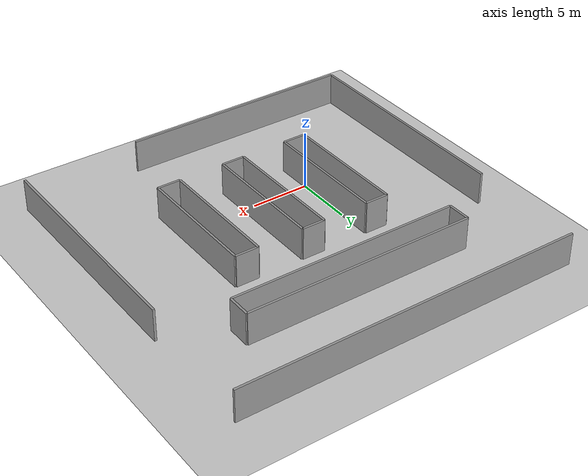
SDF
<?xml version="1.0" ?>
<!-- this file is auto generated using pedsim_gazebo_plugin pkg -->
<sdf version="1.5">
  <world name="default">
    <plugin name="gazebo_ros_state" filename="libgazebo_ros_state.so">
      <ros>
        <namespace>/gazebo_spawner</namespace>
      </ros>
      <update_rate>10.0</update_rate>
    </plugin>
    <!-- Ground Plane -->
    <include>
        <uri>model://ground_plane</uri>
    </include>
    <include>
        <uri>model://sun</uri>
    </include>

    <model name='grey_wall_1'>
      <static>1</static>
      <link name='link'>
    	<pose frame=''>0.0 -10.0  1.4 0 0 0.0</pose>

    <collision name='collision'>
      <geometry>
        <box>
        	<size> 20.0 .2  2.8 </size>
		</box>
        </geometry>
        <max_contacts>10</max_contacts>
        <surface>
        <contact>
            <ode/>
        </contact>
        <bounce/>
        <friction>
            <torsional>
            <ode/>
            </torsional>
            <ode/>
        </friction>
        </surface>
    </collision>
    <visual name='visual'>
        <cast_shadows>0</cast_shadows>
        <geometry>
          <box>
        	<size> 20.0 .2  2.8 </size>
		</box>
    </geometry>
        <material>
            <script>
            <uri>model://grey_wall/materials/scripts</uri>
            <uri>model://grey_wall/materials/textures</uri>
            <name>vrc/grey_wall</name>
            </script>
        </material>
        </visual>
        <self_collide>0</self_collide>
        <enable_wind>0</enable_wind>
        <kinematic>0</kinematic>
    </link>
    </model>

    <model name='grey_wall_2'>
      <static>1</static>
      <link name='link'>
    	<pose frame=''>20.0 0.0  1.4 0 0 1.57</pose>

    <collision name='collision'>
      <geometry>
        <box>
        	<size> 20.0 .2  2.8 </size>
		</box>
        </geometry>
        <max_contacts>10</max_contacts>
        <surface>
        <contact>
            <ode/>
        </contact>
        <bounce/>
        <friction>
            <torsional>
            <ode/>
            </torsional>
            <ode/>
        </friction>
        </surface>
    </collision>
    <visual name='visual'>
        <cast_shadows>0</cast_shadows>
        <geometry>
          <box>
        	<size> 20.0 .2  2.8 </size>
		</box>
    </geometry>
        <material>
            <script>
            <uri>model://grey_wall/materials/scripts</uri>
            <uri>model://grey_wall/materials/textures</uri>
            <name>vrc/grey_wall</name>
            </script>
        </material>
        </visual>
        <self_collide>0</self_collide>
        <enable_wind>0</enable_wind>
        <kinematic>0</kinematic>
    </link>
    </model>

    <model name='grey_wall_3'>
      <static>1</static>
      <link name='link'>
    	<pose frame=''>5.0 20.0  1.4 0 0 -0.0</pose>

    <collision name='collision'>
      <geometry>
        <box>
        	<size> 30.0 .2  2.8 </size>
		</box>
        </geometry>
        <max_contacts>10</max_contacts>
        <surface>
        <contact>
            <ode/>
        </contact>
        <bounce/>
        <friction>
            <torsional>
            <ode/>
            </torsional>
            <ode/>
        </friction>
        </surface>
    </collision>
    <visual name='visual'>
        <cast_shadows>0</cast_shadows>
        <geometry>
          <box>
        	<size> 30.0 .2  2.8 </size>
		</box>
    </geometry>
        <material>
            <script>
            <uri>model://grey_wall/materials/scripts</uri>
            <uri>model://grey_wall/materials/textures</uri>
            <name>vrc/grey_wall</name>
            </script>
        </material>
        </visual>
        <self_collide>0</self_collide>
        <enable_wind>0</enable_wind>
        <kinematic>0</kinematic>
    </link>
    </model>

    <model name='grey_wall_4'>
      <static>1</static>
      <link name='link'>
    	<pose frame=''>-10.0 0.0  1.4 0 0 1.57</pose>

    <collision name='collision'>
      <geometry>
        <box>
        	<size> 20.0 .2  2.8 </size>
		</box>
        </geometry>
        <max_contacts>10</max_contacts>
        <surface>
        <contact>
            <ode/>
        </contact>
        <bounce/>
        <friction>
            <torsional>
            <ode/>
            </torsional>
            <ode/>
        </friction>
        </surface>
    </collision>
    <visual name='visual'>
        <cast_shadows>0</cast_shadows>
        <geometry>
          <box>
        	<size> 20.0 .2  2.8 </size>
		</box>
    </geometry>
        <material>
            <script>
            <uri>model://grey_wall/materials/scripts</uri>
            <uri>model://grey_wall/materials/textures</uri>
            <name>vrc/grey_wall</name>
            </script>
        </material>
        </visual>
        <self_collide>0</self_collide>
        <enable_wind>0</enable_wind>
        <kinematic>0</kinematic>
    </link>
    </model>

    <model name='grey_wall_5'>
      <static>1</static>
      <link name='link'>
    	<pose frame=''>-1.0 -3.0  1.4 0 0 0.0</pose>

    <collision name='collision'>
      <geometry>
        <box>
        	<size> 2.0 .2  2.8 </size>
		</box>
        </geometry>
        <max_contacts>10</max_contacts>
        <surface>
        <contact>
            <ode/>
        </contact>
        <bounce/>
        <friction>
            <torsional>
            <ode/>
            </torsional>
            <ode/>
        </friction>
        </surface>
    </collision>
    <visual name='visual'>
        <cast_shadows>0</cast_shadows>
        <geometry>
          <box>
        	<size> 2.0 .2  2.8 </size>
		</box>
    </geometry>
        <material>
            <script>
            <uri>model://grey_wall/materials/scripts</uri>
            <uri>model://grey_wall/materials/textures</uri>
            <name>vrc/grey_wall</name>
            </script>
        </material>
        </visual>
        <self_collide>0</self_collide>
        <enable_wind>0</enable_wind>
        <kinematic>0</kinematic>
    </link>
    </model>

    <model name='grey_wall_6'>
      <static>1</static>
      <link name='link'>
    	<pose frame=''>0.0 2.5  1.4 0 0 1.57</pose>

    <collision name='collision'>
      <geometry>
        <box>
        	<size> 11.0 .2  2.8 </size>
		</box>
        </geometry>
        <max_contacts>10</max_contacts>
        <surface>
        <contact>
            <ode/>
        </contact>
        <bounce/>
        <friction>
            <torsional>
            <ode/>
            </torsional>
            <ode/>
        </friction>
        </surface>
    </collision>
    <visual name='visual'>
        <cast_shadows>0</cast_shadows>
        <geometry>
          <box>
        	<size> 11.0 .2  2.8 </size>
		</box>
    </geometry>
        <material>
            <script>
            <uri>model://grey_wall/materials/scripts</uri>
            <uri>model://grey_wall/materials/textures</uri>
            <name>vrc/grey_wall</name>
            </script>
        </material>
        </visual>
        <self_collide>0</self_collide>
        <enable_wind>0</enable_wind>
        <kinematic>0</kinematic>
    </link>
    </model>

    <model name='grey_wall_7'>
      <static>1</static>
      <link name='link'>
    	<pose frame=''>-1.0 8.0  1.4 0 0 -0.0</pose>

    <collision name='collision'>
      <geometry>
        <box>
        	<size> 2.0 .2  2.8 </size>
		</box>
        </geometry>
        <max_contacts>10</max_contacts>
        <surface>
        <contact>
            <ode/>
        </contact>
        <bounce/>
        <friction>
            <torsional>
            <ode/>
            </torsional>
            <ode/>
        </friction>
        </surface>
    </collision>
    <visual name='visual'>
        <cast_shadows>0</cast_shadows>
        <geometry>
          <box>
        	<size> 2.0 .2  2.8 </size>
		</box>
    </geometry>
        <material>
            <script>
            <uri>model://grey_wall/materials/scripts</uri>
            <uri>model://grey_wall/materials/textures</uri>
            <name>vrc/grey_wall</name>
            </script>
        </material>
        </visual>
        <self_collide>0</self_collide>
        <enable_wind>0</enable_wind>
        <kinematic>0</kinematic>
    </link>
    </model>

    <model name='grey_wall_8'>
      <static>1</static>
      <link name='link'>
    	<pose frame=''>-2.0 2.5  1.4 0 0 1.57</pose>

    <collision name='collision'>
      <geometry>
        <box>
        	<size> 11.0 .2  2.8 </size>
		</box>
        </geometry>
        <max_contacts>10</max_contacts>
        <surface>
        <contact>
            <ode/>
        </contact>
        <bounce/>
        <friction>
            <torsional>
            <ode/>
            </torsional>
            <ode/>
        </friction>
        </surface>
    </collision>
    <visual name='visual'>
        <cast_shadows>0</cast_shadows>
        <geometry>
          <box>
        	<size> 11.0 .2  2.8 </size>
		</box>
    </geometry>
        <material>
            <script>
            <uri>model://grey_wall/materials/scripts</uri>
            <uri>model://grey_wall/materials/textures</uri>
            <name>vrc/grey_wall</name>
            </script>
        </material>
        </visual>
        <self_collide>0</self_collide>
        <enable_wind>0</enable_wind>
        <kinematic>0</kinematic>
    </link>
    </model>

    <model name='grey_wall_9'>
      <static>1</static>
      <link name='link'>
    	<pose frame=''>5.0 -3.0  1.4 0 0 0.0</pose>

    <collision name='collision'>
      <geometry>
        <box>
        	<size> 2.0 .2  2.8 </size>
		</box>
        </geometry>
        <max_contacts>10</max_contacts>
        <surface>
        <contact>
            <ode/>
        </contact>
        <bounce/>
        <friction>
            <torsional>
            <ode/>
            </torsional>
            <ode/>
        </friction>
        </surface>
    </collision>
    <visual name='visual'>
        <cast_shadows>0</cast_shadows>
        <geometry>
          <box>
        	<size> 2.0 .2  2.8 </size>
		</box>
    </geometry>
        <material>
            <script>
            <uri>model://grey_wall/materials/scripts</uri>
            <uri>model://grey_wall/materials/textures</uri>
            <name>vrc/grey_wall</name>
            </script>
        </material>
        </visual>
        <self_collide>0</self_collide>
        <enable_wind>0</enable_wind>
        <kinematic>0</kinematic>
    </link>
    </model>

    <model name='grey_wall_10'>
      <static>1</static>
      <link name='link'>
    	<pose frame=''>6.0 2.5  1.4 0 0 1.57</pose>

    <collision name='collision'>
      <geometry>
        <box>
        	<size> 11.0 .2  2.8 </size>
		</box>
        </geometry>
        <max_contacts>10</max_contacts>
        <surface>
        <contact>
            <ode/>
        </contact>
        <bounce/>
        <friction>
            <torsional>
            <ode/>
            </torsional>
            <ode/>
        </friction>
        </surface>
    </collision>
    <visual name='visual'>
        <cast_shadows>0</cast_shadows>
        <geometry>
          <box>
        	<size> 11.0 .2  2.8 </size>
		</box>
    </geometry>
        <material>
            <script>
            <uri>model://grey_wall/materials/scripts</uri>
            <uri>model://grey_wall/materials/textures</uri>
            <name>vrc/grey_wall</name>
            </script>
        </material>
        </visual>
        <self_collide>0</self_collide>
        <enable_wind>0</enable_wind>
        <kinematic>0</kinematic>
    </link>
    </model>

    <model name='grey_wall_11'>
      <static>1</static>
      <link name='link'>
    	<pose frame=''>5.0 8.0  1.4 0 0 -0.0</pose>

    <collision name='collision'>
      <geometry>
        <box>
        	<size> 2.0 .2  2.8 </size>
		</box>
        </geometry>
        <max_contacts>10</max_contacts>
        <surface>
        <contact>
            <ode/>
        </contact>
        <bounce/>
        <friction>
            <torsional>
            <ode/>
            </torsional>
            <ode/>
        </friction>
        </surface>
    </collision>
    <visual name='visual'>
        <cast_shadows>0</cast_shadows>
        <geometry>
          <box>
        	<size> 2.0 .2  2.8 </size>
		</box>
    </geometry>
        <material>
            <script>
            <uri>model://grey_wall/materials/scripts</uri>
            <uri>model://grey_wall/materials/textures</uri>
            <name>vrc/grey_wall</name>
            </script>
        </material>
        </visual>
        <self_collide>0</self_collide>
        <enable_wind>0</enable_wind>
        <kinematic>0</kinematic>
    </link>
    </model>

    <model name='grey_wall_12'>
      <static>1</static>
      <link name='link'>
    	<pose frame=''>4.0 2.5  1.4 0 0 1.57</pose>

    <collision name='collision'>
      <geometry>
        <box>
        	<size> 11.0 .2  2.8 </size>
		</box>
        </geometry>
        <max_contacts>10</max_contacts>
        <surface>
        <contact>
            <ode/>
        </contact>
        <bounce/>
        <friction>
            <torsional>
            <ode/>
            </torsional>
            <ode/>
        </friction>
        </surface>
    </collision>
    <visual name='visual'>
        <cast_shadows>0</cast_shadows>
        <geometry>
          <box>
        	<size> 11.0 .2  2.8 </size>
		</box>
    </geometry>
        <material>
            <script>
            <uri>model://grey_wall/materials/scripts</uri>
            <uri>model://grey_wall/materials/textures</uri>
            <name>vrc/grey_wall</name>
            </script>
        </material>
        </visual>
        <self_collide>0</self_collide>
        <enable_wind>0</enable_wind>
        <kinematic>0</kinematic>
    </link>
    </model>

    <model name='grey_wall_13'>
      <static>1</static>
      <link name='link'>
    	<pose frame=''>11.0 -3.0  1.4 0 0 0.0</pose>

    <collision name='collision'>
      <geometry>
        <box>
        	<size> 2.0 .2  2.8 </size>
		</box>
        </geometry>
        <max_contacts>10</max_contacts>
        <surface>
        <contact>
            <ode/>
        </contact>
        <bounce/>
        <friction>
            <torsional>
            <ode/>
            </torsional>
            <ode/>
        </friction>
        </surface>
    </collision>
    <visual name='visual'>
        <cast_shadows>0</cast_shadows>
        <geometry>
          <box>
        	<size> 2.0 .2  2.8 </size>
		</box>
    </geometry>
        <material>
            <script>
            <uri>model://grey_wall/materials/scripts</uri>
            <uri>model://grey_wall/materials/textures</uri>
            <name>vrc/grey_wall</name>
            </script>
        </material>
        </visual>
        <self_collide>0</self_collide>
        <enable_wind>0</enable_wind>
        <kinematic>0</kinematic>
    </link>
    </model>

    <model name='grey_wall_14'>
      <static>1</static>
      <link name='link'>
    	<pose frame=''>12.0 2.5  1.4 0 0 1.57</pose>

    <collision name='collision'>
      <geometry>
        <box>
        	<size> 11.0 .2  2.8 </size>
		</box>
        </geometry>
        <max_contacts>10</max_contacts>
        <surface>
        <contact>
            <ode/>
        </contact>
        <bounce/>
        <friction>
            <torsional>
            <ode/>
            </torsional>
            <ode/>
        </friction>
        </surface>
    </collision>
    <visual name='visual'>
        <cast_shadows>0</cast_shadows>
        <geometry>
          <box>
        	<size> 11.0 .2  2.8 </size>
		</box>
    </geometry>
        <material>
            <script>
            <uri>model://grey_wall/materials/scripts</uri>
            <uri>model://grey_wall/materials/textures</uri>
            <name>vrc/grey_wall</name>
            </script>
        </material>
        </visual>
        <self_collide>0</self_collide>
        <enable_wind>0</enable_wind>
        <kinematic>0</kinematic>
    </link>
    </model>

    <model name='grey_wall_15'>
      <static>1</static>
      <link name='link'>
    	<pose frame=''>11.0 8.0  1.4 0 0 -0.0</pose>

    <collision name='collision'>
      <geometry>
        <box>
        	<size> 2.0 .2  2.8 </size>
		</box>
        </geometry>
        <max_contacts>10</max_contacts>
        <surface>
        <contact>
            <ode/>
        </contact>
        <bounce/>
        <friction>
            <torsional>
            <ode/>
            </torsional>
            <ode/>
        </friction>
        </surface>
    </collision>
    <visual name='visual'>
        <cast_shadows>0</cast_shadows>
        <geometry>
          <box>
        	<size> 2.0 .2  2.8 </size>
		</box>
    </geometry>
        <material>
            <script>
            <uri>model://grey_wall/materials/scripts</uri>
            <uri>model://grey_wall/materials/textures</uri>
            <name>vrc/grey_wall</name>
            </script>
        </material>
        </visual>
        <self_collide>0</self_collide>
        <enable_wind>0</enable_wind>
        <kinematic>0</kinematic>
    </link>
    </model>

    <model name='grey_wall_16'>
      <static>1</static>
      <link name='link'>
    	<pose frame=''>10.0 2.5  1.4 0 0 1.57</pose>

    <collision name='collision'>
      <geometry>
        <box>
        	<size> 11.0 .2  2.8 </size>
		</box>
        </geometry>
        <max_contacts>10</max_contacts>
        <surface>
        <contact>
            <ode/>
        </contact>
        <bounce/>
        <friction>
            <torsional>
            <ode/>
            </torsional>
            <ode/>
        </friction>
        </surface>
    </collision>
    <visual name='visual'>
        <cast_shadows>0</cast_shadows>
        <geometry>
          <box>
        	<size> 11.0 .2  2.8 </size>
		</box>
    </geometry>
        <material>
            <script>
            <uri>model://grey_wall/materials/scripts</uri>
            <uri>model://grey_wall/materials/textures</uri>
            <name>vrc/grey_wall</name>
            </script>
        </material>
        </visual>
        <self_collide>0</self_collide>
        <enable_wind>0</enable_wind>
        <kinematic>0</kinematic>
    </link>
    </model>

    <model name='grey_wall_17'>
      <static>1</static>
      <link name='link'>
    	<pose frame=''>5.0 12.0  1.4 0 0 0.0</pose>

    <collision name='collision'>
      <geometry>
        <box>
        	<size> 20.0 .2  2.8 </size>
		</box>
        </geometry>
        <max_contacts>10</max_contacts>
        <surface>
        <contact>
            <ode/>
        </contact>
        <bounce/>
        <friction>
            <torsional>
            <ode/>
            </torsional>
            <ode/>
        </friction>
        </surface>
    </collision>
    <visual name='visual'>
        <cast_shadows>0</cast_shadows>
        <geometry>
          <box>
        	<size> 20.0 .2  2.8 </size>
		</box>
    </geometry>
        <material>
            <script>
            <uri>model://grey_wall/materials/scripts</uri>
            <uri>model://grey_wall/materials/textures</uri>
            <name>vrc/grey_wall</name>
            </script>
        </material>
        </visual>
        <self_collide>0</self_collide>
        <enable_wind>0</enable_wind>
        <kinematic>0</kinematic>
    </link>
    </model>

    <model name='grey_wall_18'>
      <static>1</static>
      <link name='link'>
    	<pose frame=''>15.0 13.0  1.4 0 0 1.57</pose>

    <collision name='collision'>
      <geometry>
        <box>
        	<size> 2.0 .2  2.8 </size>
		</box>
        </geometry>
        <max_contacts>10</max_contacts>
        <surface>
        <contact>
            <ode/>
        </contact>
        <bounce/>
        <friction>
            <torsional>
            <ode/>
            </torsional>
            <ode/>
        </friction>
        </surface>
    </collision>
    <visual name='visual'>
        <cast_shadows>0</cast_shadows>
        <geometry>
          <box>
        	<size> 2.0 .2  2.8 </size>
		</box>
    </geometry>
        <material>
            <script>
            <uri>model://grey_wall/materials/scripts</uri>
            <uri>model://grey_wall/materials/textures</uri>
            <name>vrc/grey_wall</name>
            </script>
        </material>
        </visual>
        <self_collide>0</self_collide>
        <enable_wind>0</enable_wind>
        <kinematic>0</kinematic>
    </link>
    </model>

    <model name='grey_wall_19'>
      <static>1</static>
      <link name='link'>
    	<pose frame=''>5.0 14.0  1.4 0 0 -0.0</pose>

    <collision name='collision'>
      <geometry>
        <box>
        	<size> 20.0 .2  2.8 </size>
		</box>
        </geometry>
        <max_contacts>10</max_contacts>
        <surface>
        <contact>
            <ode/>
        </contact>
        <bounce/>
        <friction>
            <torsional>
            <ode/>
            </torsional>
            <ode/>
        </friction>
        </surface>
    </collision>
    <visual name='visual'>
        <cast_shadows>0</cast_shadows>
        <geometry>
          <box>
        	<size> 20.0 .2  2.8 </size>
		</box>
    </geometry>
        <material>
            <script>
            <uri>model://grey_wall/materials/scripts</uri>
            <uri>model://grey_wall/materials/textures</uri>
            <name>vrc/grey_wall</name>
            </script>
        </material>
        </visual>
        <self_collide>0</self_collide>
        <enable_wind>0</enable_wind>
        <kinematic>0</kinematic>
    </link>
    </model>

    <model name='grey_wall_20'>
      <static>1</static>
      <link name='link'>
    	<pose frame=''>-5.0 13.0  1.4 0 0 1.57</pose>

    <collision name='collision'>
      <geometry>
        <box>
        	<size> 2.0 .2  2.8 </size>
		</box>
        </geometry>
        <max_contacts>10</max_contacts>
        <surface>
        <contact>
            <ode/>
        </contact>
        <bounce/>
        <friction>
            <torsional>
            <ode/>
            </torsional>
            <ode/>
        </friction>
        </surface>
    </collision>
    <visual name='visual'>
        <cast_shadows>0</cast_shadows>
        <geometry>
          <box>
        	<size> 2.0 .2  2.8 </size>
		</box>
    </geometry>
        <material>
            <script>
            <uri>model://grey_wall/materials/scripts</uri>
            <uri>model://grey_wall/materials/textures</uri>
            <name>vrc/grey_wall</name>
            </script>
        </material>
        </visual>
        <self_collide>0</self_collide>
        <enable_wind>0</enable_wind>
        <kinematic>0</kinematic>
    </link>
    </model>

  </world>
</sdf>
